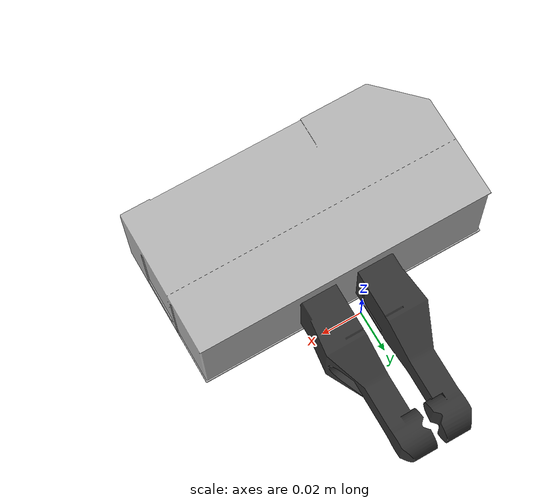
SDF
<?xml version="1.0"?>
<!-- This sdf file is based on schunk_wsg_50.sdf -->
<sdf version="1.7">
  <model name="Schunk_Gripper">
    <link name="body">
      <pose>0 -0.049133 0 0 0 0</pose>
      <inertial>
        <mass>0.988882</mass>
        <inertia>
          <ixx>0.162992</ixx>
          <ixy>0</ixy>
          <ixz>0</ixz>
          <iyy>0.162992</iyy>
          <iyz>0</iyz>
          <izz>0.164814</izz>
        </inertia>
      </inertial>
      <kinematic>0</kinematic>
      <visual name="visual">
        <geometry>
          <mesh>
            <scale>1 1 1</scale>
            <uri>package://drake_models/wsg_50_description/meshes/wsg_body.obj</uri>
          </mesh>
        </geometry>
        <material>
          <diffuse>0.7 0.7 0.7 1</diffuse>
        </material>
      </visual>
      <collision name="collision">
        <laser_retro>0</laser_retro>
        <geometry>
          <box>
            <size>0.146 0.0725 0.05</size>
          </box>
        </geometry>
        <surface>
          <friction>
            <ode>
              <mu>1</mu>
              <mu2>1</mu2>
              <fdir1>0 0 0</fdir1>
              <slip1>0</slip1>
              <slip2>0</slip2>
            </ode>
            <torsional>
              <coefficient>1</coefficient>
              <patch_radius>0</patch_radius>
              <surface_radius>0</surface_radius>
              <use_patch_radius>1</use_patch_radius>
              <ode>
                <slip>0</slip>
              </ode>
            </torsional>
          </friction>
          <bounce>
            <restitution_coefficient>0</restitution_coefficient>
            <threshold>1e+06</threshold>
          </bounce>
          <contact>
            <collide_without_contact>0</collide_without_contact>
            <collide_without_contact_bitmask>1</collide_without_contact_bitmask>
            <collide_bitmask>1</collide_bitmask>
            <ode>
              <soft_cfm>0</soft_cfm>
              <soft_erp>0.2</soft_erp>
              <kp>1e+13</kp>
              <kd>1</kd>
              <max_vel>0.01</max_vel>
              <min_depth>0</min_depth>
            </ode>
            <bullet>
              <split_impulse>1</split_impulse>
              <split_impulse_penetration_threshold>-0.01</split_impulse_penetration_threshold>
              <soft_cfm>0</soft_cfm>
              <soft_erp>0.2</soft_erp>
              <kp>1e+13</kp>
              <kd>1</kd>
            </bullet>
          </contact>
        </surface>
      </collision>
    </link>
    <frame name="body_frame">
      <pose relative_to="body"/>
    </frame>
    <link name="left_finger">
      <pose>-0.0115 0.028 0 0 3.141592 0</pose>
      <inertial>
        <mass>0.05</mass>
        <inertia>
          <ixx>0.16</ixx>
          <ixy>0</ixy>
          <ixz>0</ixz>
          <iyy>0.16</iyy>
          <iyz>0</iyz>
          <izz>0.16</izz>
        </inertia>
      </inertial>
      <kinematic>0</kinematic>
      <visual name="visual">
        <geometry>
          <mesh>
            <scale>1 1 1</scale>
            <uri>package://drake_models/wsg_50_description/meshes/finger_with_tip.obj</uri>
          </mesh>
        </geometry>
        <material>
          <diffuse>0.2 0.2 0.2 1</diffuse>
        </material>
      </visual>
      <collision name="left_top">
        <pose> -0.008 0.021 0 0 0 0 </pose>
        <geometry>
          <sphere>
            <radius> 0.001 </radius>
          </sphere>
        </geometry>
      </collision>
      <collision name="left_bottom">
        <pose> -0.008 0.041 0 0 0 0 </pose>
        <geometry>
          <sphere>
            <radius> 0.001 </radius>
          </sphere>
        </geometry>
      </collision>
      <collision name="left_left">
        <pose> -0.008 0.031 -0.01 0 0 0 </pose>
        <geometry>
          <sphere>
            <radius> 0.001 </radius>
          </sphere>
        </geometry>
      </collision>
      <collision name="left_right">
        <pose> -0.008 0.031 0.01 0 0 0 </pose>
        <geometry>
          <sphere>
            <radius> 0.001 </radius>
          </sphere>
        </geometry>
      </collision>
      <collision name="collision">
        <laser_retro>0</laser_retro>
        <geometry>
          <box>
            <size>0.012 0.082 0.02</size>
          </box>
        </geometry>
        <surface>
          <friction>
            <ode>
              <mu>1</mu>
              <mu2>1</mu2>
              <fdir1>0 0 0</fdir1>
              <slip1>0</slip1>
              <slip2>0</slip2>
            </ode>
            <torsional>
              <coefficient>1</coefficient>
              <patch_radius>0</patch_radius>
              <surface_radius>0</surface_radius>
              <use_patch_radius>1</use_patch_radius>
              <ode>
                <slip>0</slip>
              </ode>
            </torsional>
          </friction>
          <bounce>
            <restitution_coefficient>0</restitution_coefficient>
            <threshold>1e+06</threshold>
          </bounce>
          <contact>
            <collide_without_contact>0</collide_without_contact>
            <collide_without_contact_bitmask>1</collide_without_contact_bitmask>
            <collide_bitmask>1</collide_bitmask>
            <ode>
              <soft_cfm>0</soft_cfm>
              <soft_erp>0.2</soft_erp>
              <kp>1e+13</kp>
              <kd>1</kd>
              <max_vel>0.01</max_vel>
              <min_depth>0</min_depth>
            </ode>
            <bullet>
              <split_impulse>1</split_impulse>
              <split_impulse_penetration_threshold>-0.01</split_impulse_penetration_threshold>
              <soft_cfm>0</soft_cfm>
              <soft_erp>0.2</soft_erp>
              <kp>1e+13</kp>
              <kd>1</kd>
            </bullet>
          </contact>
        </surface>
      </collision>
    </link>
    <link name="right_finger">
      <pose>0.0115 0.028 0 0 0 0</pose>
      <inertial>
        <mass>0.05</mass>
        <inertia>
          <ixx>0.16</ixx>
          <ixy>0</ixy>
          <ixz>0</ixz>
          <iyy>0.16</iyy>
          <iyz>0</iyz>
          <izz>0.16</izz>
        </inertia>
      </inertial>
      <kinematic>0</kinematic>
      <visual name="visual">
        <geometry>
          <mesh>
            <scale>1 1 1</scale>
            <uri>package://drake_models/wsg_50_description/meshes/finger_with_tip.obj</uri>
          </mesh>
        </geometry>
        <material>
          <diffuse>0.2 0.2 0.2 1</diffuse>
        </material>
      </visual>
      <collision name="right_top">
        <pose> -0.008 0.021 0 0 0 0 </pose>
        <geometry>
          <sphere>
            <radius> 0.001 </radius>
          </sphere>
        </geometry>
      </collision>
      <collision name="right_bottom">
        <pose> -0.008 0.041 0 0 0 0 </pose>
        <geometry>
          <sphere>
            <radius> 0.001 </radius>
          </sphere>
        </geometry>
      </collision>
      <collision name="right_left">
        <pose> -0.008 0.031 -0.01 0 0 0 </pose>
        <geometry>
          <sphere>
            <radius> 0.001 </radius>
          </sphere>
        </geometry>
      </collision>
      <collision name="right_right">
        <pose> -0.008 0.031 0.01 0 0 0 </pose>
        <geometry>
          <sphere>
            <radius> 0.001 </radius>
          </sphere>
        </geometry>
      </collision>
      <collision name="collision">
        <laser_retro>0</laser_retro>
        <geometry>
          <box>
            <size>0.012 0.082 0.02</size>
          </box>
        </geometry>
        <surface>
          <friction>
            <ode>
              <mu>1</mu>
              <mu2>1</mu2>
              <fdir1>0 0 0</fdir1>
              <slip1>0</slip1>
              <slip2>0</slip2>
            </ode>
            <torsional>
              <coefficient>1</coefficient>
              <patch_radius>0</patch_radius>
              <surface_radius>0</surface_radius>
              <use_patch_radius>1</use_patch_radius>
              <ode>
                <slip>0</slip>
              </ode>
            </torsional>
          </friction>
          <bounce>
            <restitution_coefficient>0</restitution_coefficient>
            <threshold>1e+06</threshold>
          </bounce>
          <contact>
            <collide_without_contact>0</collide_without_contact>
            <collide_without_contact_bitmask>1</collide_without_contact_bitmask>
            <collide_bitmask>1</collide_bitmask>
            <ode>
              <soft_cfm>0</soft_cfm>
              <soft_erp>0.2</soft_erp>
              <kp>1e+13</kp>
              <kd>1</kd>
              <max_vel>0.01</max_vel>
              <min_depth>0</min_depth>
            </ode>
            <bullet>
              <split_impulse>1</split_impulse>
              <split_impulse_penetration_threshold>-0.01</split_impulse_penetration_threshold>
              <soft_cfm>0</soft_cfm>
              <soft_erp>0.2</soft_erp>
              <kp>1e+13</kp>
              <kd>1</kd>
            </bullet>
          </contact>
        </surface>
      </collision>
    </link>
    <joint name="left_finger_sliding_joint" type="prismatic">
      <parent>body</parent>
      <child>left_finger</child>
      <!-- Use MultibodyPlant's PD controller interface. -->
      <drake:controller_gains p="100000" d="1000" />
      <axis>
        <xyz>-1 0 0</xyz>
        <!-- Drake attaches an actuator to all and only joints with a nonzero
             effort limit. -->
        <limit>
          <lower>-0.055</lower>
          <upper>0</upper>
          <effort>80</effort>
          <stiffness>15000</stiffness>
        </limit>
        <dynamics>
          <spring_reference>0</spring_reference>
          <spring_stiffness>0</spring_stiffness>
          <damping>0</damping>
          <friction>0</friction>
        </dynamics>
      </axis>
    </joint>
    <joint name="right_finger_sliding_joint" type="prismatic">
      <parent>body</parent>
      <child>right_finger</child>
      <!-- Folow the left finger joint position. -->
      <drake:mimic joint="left_finger_sliding_joint" multiplier="-1" offset="0" />
      <axis>
        <xyz>1 0 0</xyz>
        <!-- Set effort limit to 0 so no actuator is created for this joint. -->
        <limit>
          <lower>0</lower>
          <upper>0.055</upper>
          <effort>0</effort>
          <stiffness>15000</stiffness>
        </limit>
        <dynamics>
          <spring_reference>0</spring_reference>
          <spring_stiffness>0</spring_stiffness>
          <damping>0</damping>
          <friction>0</friction>
        </dynamics>
      </axis>
    </joint>
    <static>0</static>
  </model>
</sdf>
